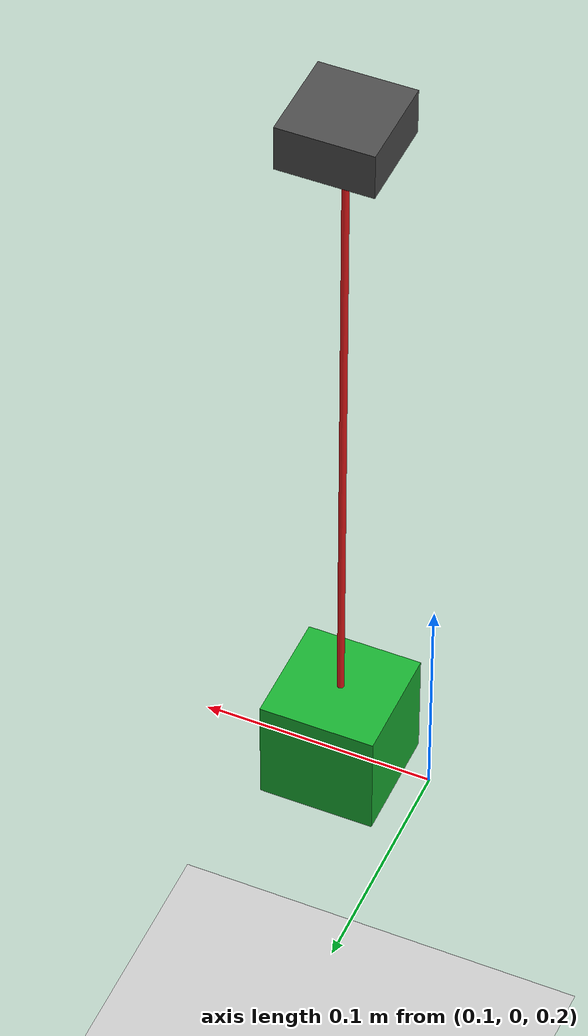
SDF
<?xml version="1.0" ?>
<sdf version="1.8">
  <world name="pendulum_grasp_world">

    <!-- Physics settings: 0.002s step size, max speed headless -->
    <physics name="2ms" type="ignored">
      <max_step_size>0.002</max_step_size>
      <real_time_factor>0.0</real_time_factor>
      <real_time_update_rate>0</real_time_update_rate>
    </physics>

    <!-- Plugins -->
    <plugin filename="gz-sim-physics-system" name="gz::sim::systems::Physics"/>
    <plugin filename="gz-sim-user-commands-system" name="gz::sim::systems::UserCommands"/>
    <plugin filename="gz-sim-scene-broadcaster-system" name="gz::sim::systems::SceneBroadcaster"/>
    <plugin filename="gz-sim-contact-system" name="gz::sim::systems::Contact"/>

    <!-- Sun light -->
    <light type="directional" name="sun">
      <cast_shadows>true</cast_shadows>
      <pose>0 0 10 0 0 0</pose>
      <diffuse>0.8 0.8 0.8 1</diffuse>
      <specular>0.2 0.2 0.2 1</specular>
      <direction>-0.5 0.1 -0.9</direction>
    </light>

    <!-- Ground plane -->
    <model name="ground_plane">
      <static>true</static>
      <link name="link">
        <collision name="collision">
          <geometry>
            <plane>
              <normal>0 0 1</normal>
              <size>10 10</size>
            </plane>
          </geometry>
        </collision>
        <visual name="visual">
          <geometry>
            <plane>
              <normal>0 0 1</normal>
              <size>10 10</size>
            </plane>
          </geometry>
          <material>
            <ambient>0.8 0.8 0.8 1</ambient>
            <diffuse>0.8 0.8 0.8 1</diffuse>
          </material>
        </visual>
      </link>
    </model>

    <!-- Con lắc: Bệ treo + Dây + Khối -->
    <model name="cube_pendulum">
      <pose>0.14 0.0 0.54 0 0 0</pose> <!-- Tâm bệ treo trên r=0.14m -->

      <!-- Bệ treo cố định -->
      <link name="pedestal_top">
        <static>true</static>
        <pose>0 0 0 0 0 0</pose>
        <visual name="visual">
          <geometry>
            <box><size>0.04 0.04 0.02</size></box>
          </geometry>
          <material>
            <ambient>0.3 0.3 0.3 1</ambient>
            <diffuse>0.3 0.3 0.3 1</diffuse>
          </material>
        </visual>
      </link>

      <!-- Khớp cầu dây (Ball joint) kết nối bệ treo và dây -->
      <joint name="rope_ball_joint" type="ball">
        <parent>pedestal_top</parent>
        <child>rope_link</child>
        <pose>0 0 0.15 0 0 0</pose> <!-- Khớp nằm ở đầu trên của dây -->
        <axis>
          <dynamics>
            <!-- Tham số con lắc chuẩn v5.0: damping=0.003 (ζ ≈ 0.03), friction=0.0005 -->
            <damping>0.003</damping>
            <friction>0.0005</friction>
          </dynamics>
        </axis>
      </joint>

      <!-- Dây 30 cm -->
      <link name="rope_link">
        <pose>0 0 -0.15 0 0 0</pose>
        <inertial>
          <mass>0.005</mass>
          <inertia>
            <ixx>3.75e-5</ixx><ixy>0</ixy><ixz>0</ixz>
            <iyy>3.75e-5</iyy><iyz>0</iyz>
            <izz>1e-7</izz>
          </inertia>
        </inertial>
        <visual name="visual">
          <geometry>
            <cylinder><radius>0.0015</radius><length>0.30</length></cylinder>
          </geometry>
          <material>
            <ambient>0.9 0.1 0.1 1</ambient>
            <diffuse>0.9 0.1 0.1 1</diffuse>
          </material>
        </visual>
        <!-- Không dùng collision cho dây để tối ưu hiệu năng -->
      </link>

      <!-- Khớp nối cố định đầu dưới dây với khối cube -->
      <joint name="rope_to_cube_joint" type="fixed">
        <parent>rope_link</parent>
        <child>cube_link</child>
        <pose>0 0 -0.15 0 0 0</pose>
      </joint>

      <!-- Khối lập phương 5x5x5 cm (0.1 kg) -->
      <link name="cube_link">
        <pose>0 0 -0.325 0 0 0</pose> <!-- Gắn ngay dưới đầu dây (-0.15 - 0.025 = -0.175) -->
        <inertial>
          <mass>0.100</mass>
          <inertia>
            <ixx>4.167e-5</ixx><ixy>0</ixy><ixz>0</ixz>
            <iyy>4.167e-5</iyy><iyz>0</iyz>
            <izz>4.167e-5</izz>
          </inertia>
        </inertial>
        <visual name="visual">
          <geometry>
            <box><size>0.05 0.05 0.05</size></box>
          </geometry>
          <material>
            <ambient>0.1 0.7 0.2 1</ambient>
            <diffuse>0.1 0.7 0.2 1</diffuse>
          </material>
        </visual>
        <collision name="collision">
          <geometry>
            <box><size>0.05 0.05 0.05</size></box>
          </geometry>
          <surface>
            <friction>
              <ode>
                <mu>1.0</mu>
                <mu2>1.0</mu2>
              </ode>
            </friction>
          </surface>
        </collision>
      </link>
    </model>

  </world>
</sdf>
